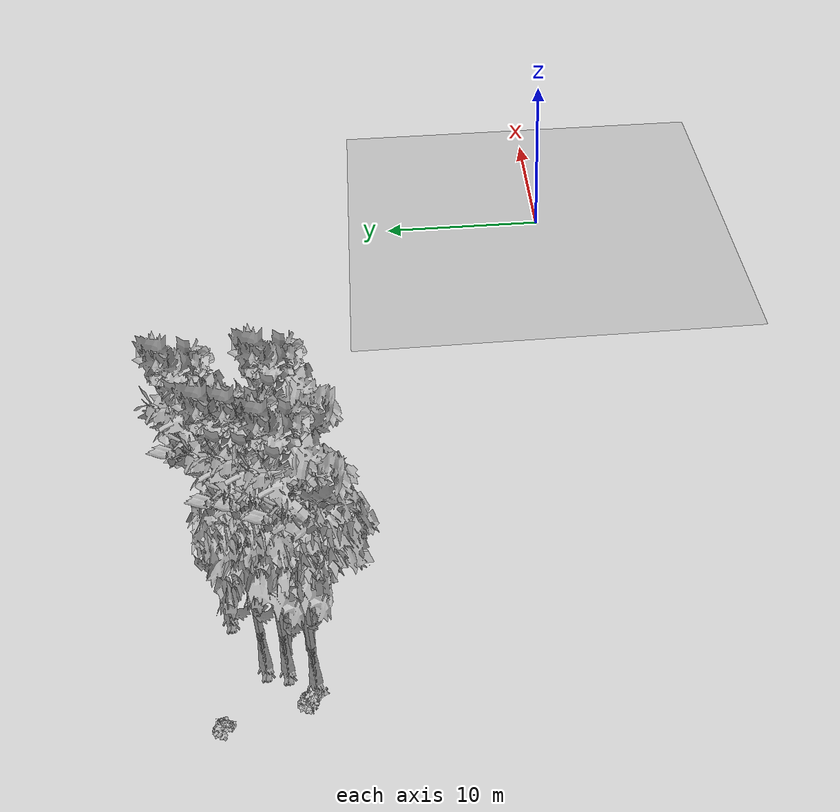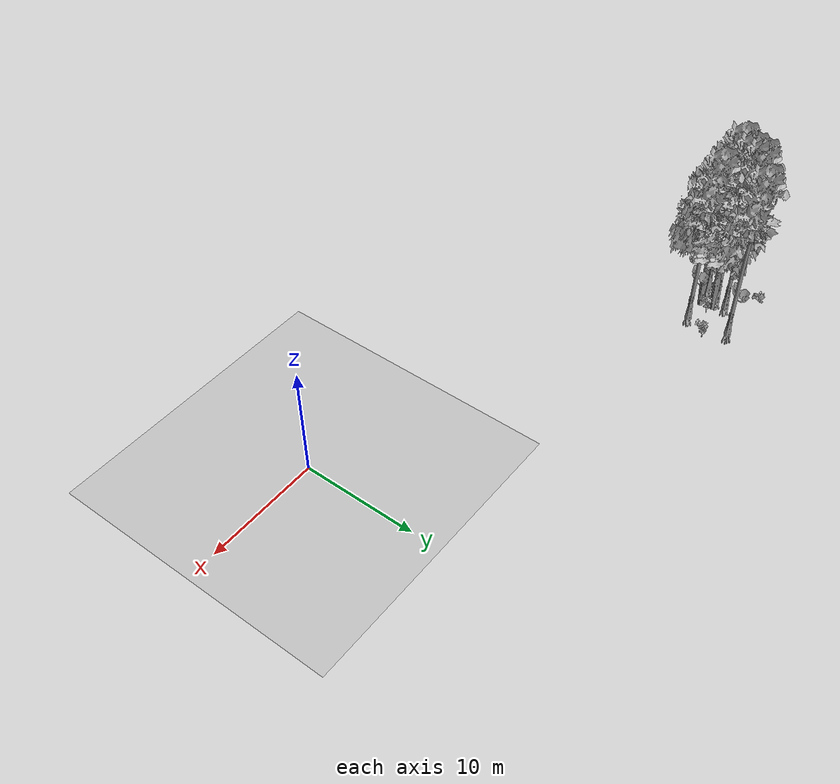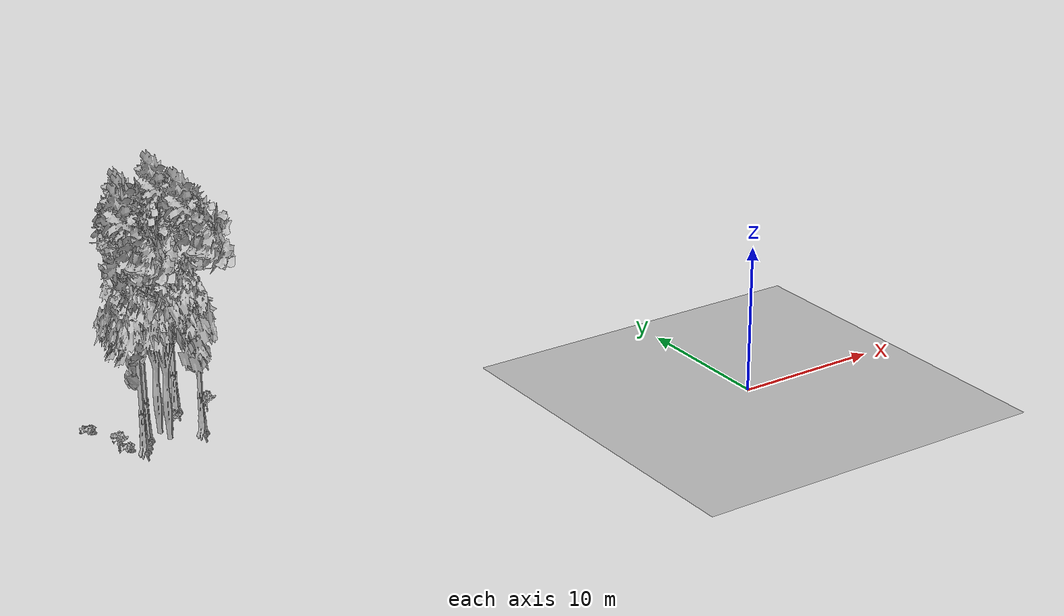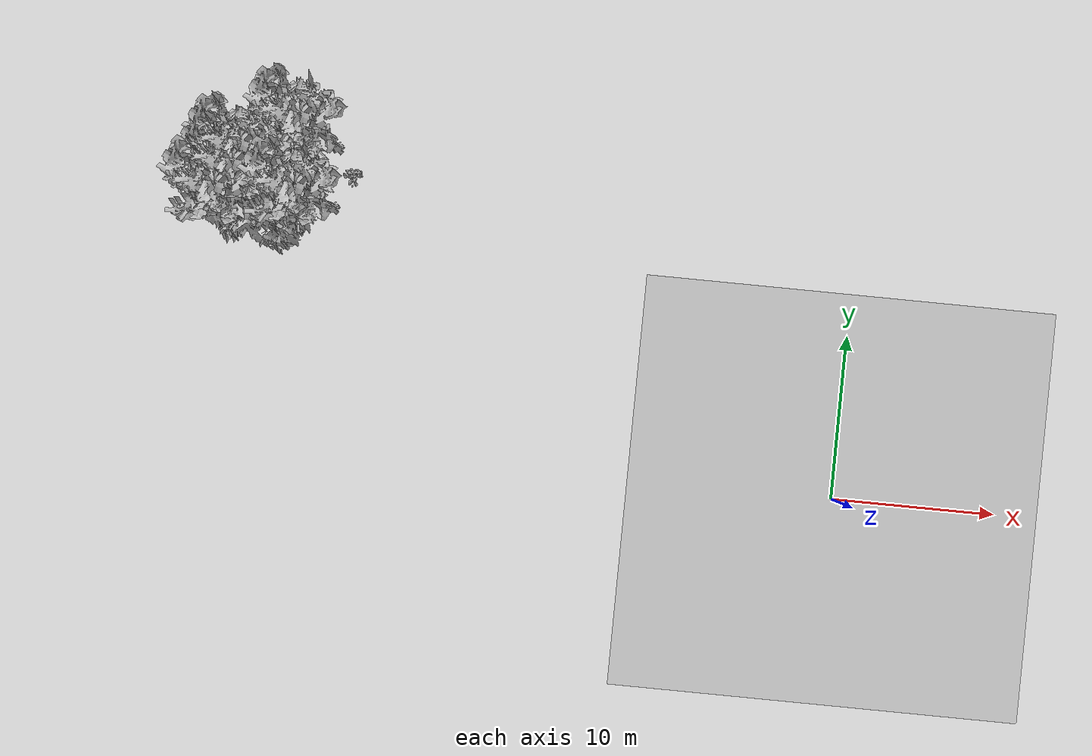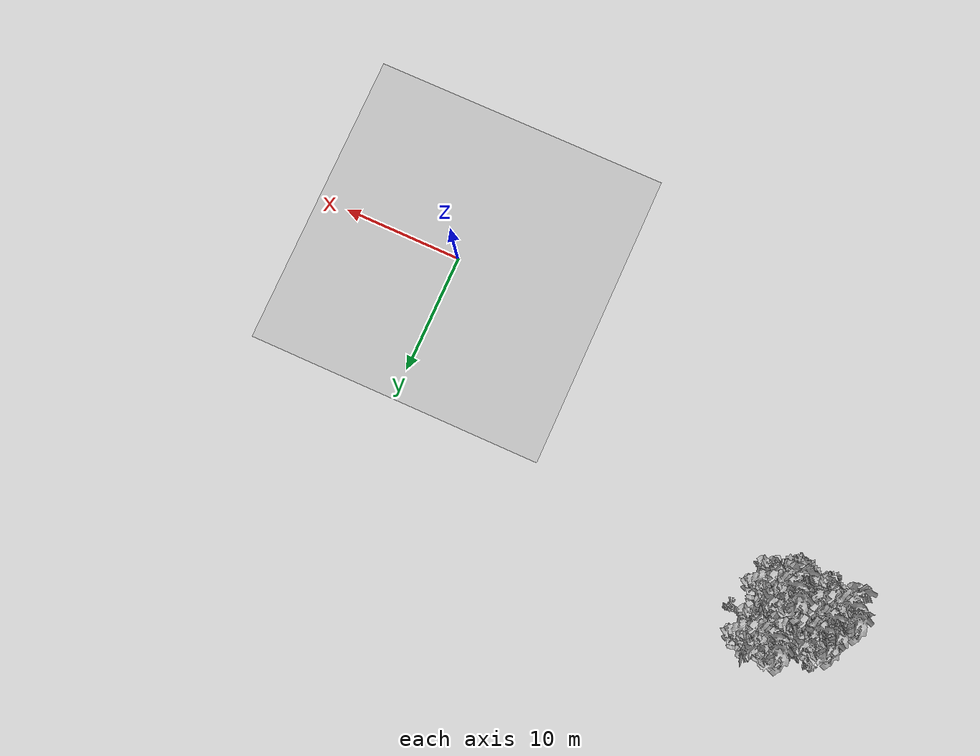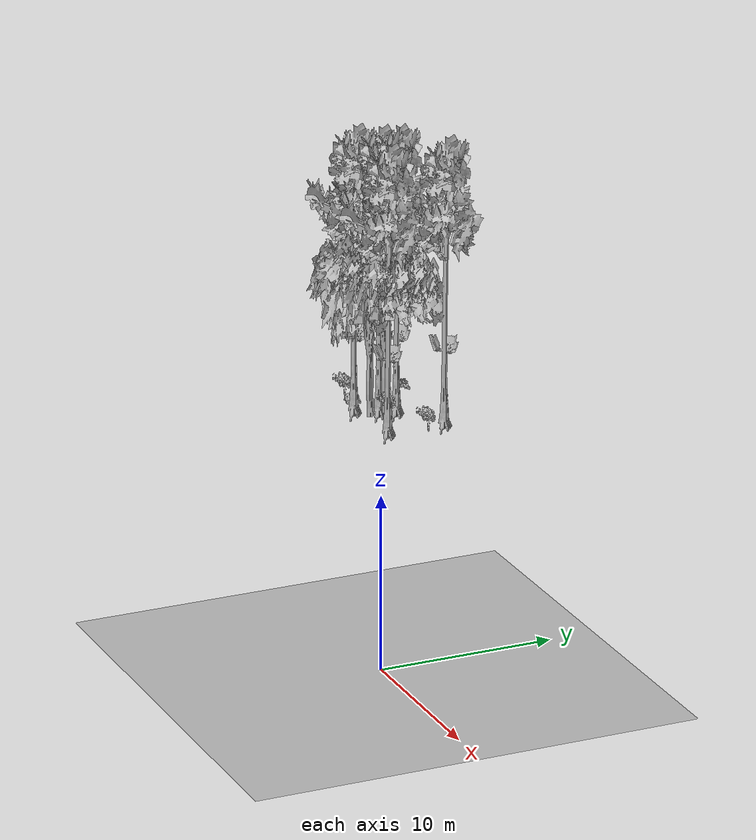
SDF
<sdf version="1.7">
 <world name="default">
  <model name="ground_plane">
   <static>1</static>
   <link name="link">
    <collision name="collision">
     <pose>-50 0 0 0 -0 0</pose>
     <geometry><plane><normal>0 0 1</normal><size>80 80</size></plane></geometry>
     <surface><contact><ode><min_depth>0.01</min_depth><max_vel>0</max_vel></ode></contact></surface>
    </collision>
    <visual name="grass">
     <cast_shadows>0</cast_shadows>
     <geometry>
      <mesh>
       <scale>0.46714285714285714 0.46714285714285714 0.1</scale>
       <uri>file://grass_plane/meshes/grass_plane.dae</uri>
      </mesh>
     </geometry>
    </visual>
   </link>
  </model>
  <model name="Tree 197">
   <static>1</static>
   <pose>-32.24280859333469 14.80828478212706 0 1.57079 -0 0</pose>
   <link name="link">
    <collision name="collision">
     <geometry><mesh><scale>3.5 5 3.5</scale><uri>model://tree_9/meshes/tree_9.obj</uri></mesh></geometry>
    </collision>
    <visual name="visual">
     <geometry><mesh><scale>3.5 5 3.5</scale><uri>model://tree_9/meshes/tree_9.obj</uri></mesh></geometry>
    </visual>
   </link>
  </model>
  <model name="Tree 265">
   <static>1</static>
   <pose>-34.81113696059122 15.767453813014242 0 1.57079 -0 0</pose>
   <link name="link">
    <collision name="collision">
     <geometry><mesh><scale>3.5 5 3.5</scale><uri>model://tree_2/meshes/tree_2.obj</uri></mesh></geometry>
    </collision>
    <visual name="visual">
     <geometry><mesh><scale>3.5 5 3.5</scale><uri>model://tree_2/meshes/tree_2.obj</uri></mesh></geometry>
    </visual>
   </link>
  </model>
  <model name="Tree 381">
   <static>1</static>
   <pose>-35.32030512550278 16.733878264651274 0 1.57079 -0 0</pose>
   <link name="link">
    <collision name="collision">
     <geometry><mesh><scale>3.5 5 3.5</scale><uri>model://tree_9/meshes/tree_9.obj</uri></mesh></geometry>
    </collision>
    <visual name="visual">
     <geometry><mesh><scale>3.5 5 3.5</scale><uri>model://tree_9/meshes/tree_9.obj</uri></mesh></geometry>
    </visual>
   </link>
  </model>
  <model name="Tree 397">
   <static>1</static>
   <pose>-32.31409940740376 18.50196614774059 0 1.57079 -0 0</pose>
   <link name="link">
    <collision name="collision">
     <geometry><mesh><scale>3.5 5 3.5</scale><uri>model://tree_9/meshes/tree_9.obj</uri></mesh></geometry>
    </collision>
    <visual name="visual">
     <geometry><mesh><scale>3.5 5 3.5</scale><uri>model://tree_9/meshes/tree_9.obj</uri></mesh></geometry>
    </visual>
   </link>
  </model>
  <model name="Tree 500">
   <static>1</static>
   <pose>-35.60337927903242 15.734019120228886 0 1.57079 -0 0</pose>
   <link name="link">
    <collision name="collision">
     <geometry><mesh><scale>3.5 5 3.5</scale><uri>model://tree_9/meshes/tree_9.obj</uri></mesh></geometry>
    </collision>
    <visual name="visual">
     <geometry><mesh><scale>3.5 5 3.5</scale><uri>model://tree_9/meshes/tree_9.obj</uri></mesh></geometry>
    </visual>
   </link>
  </model>
  <model name="Tree 522">
   <static>1</static>
   <pose>-36.43197025982589 14.462302105366291 0 1.57079 -0 0</pose>
   <link name="link">
    <collision name="collision">
     <geometry><mesh><scale>3.5 5 3.5</scale><uri>model://tree_9/meshes/tree_9.obj</uri></mesh></geometry>
    </collision>
    <visual name="visual">
     <geometry><mesh><scale>3.5 5 3.5</scale><uri>model://tree_9/meshes/tree_9.obj</uri></mesh></geometry>
    </visual>
   </link>
  </model>
  <model name="Tree 629">
   <static>1</static>
   <pose>-34.63153295215398 14.69196833112587 0 1.57079 -0 0</pose>
   <link name="link">
    <collision name="collision">
     <geometry><mesh><scale>3.5 5 3.5</scale><uri>model://tree_2/meshes/tree_2.obj</uri></mesh></geometry>
    </collision>
    <visual name="visual">
     <geometry><mesh><scale>3.5 5 3.5</scale><uri>model://tree_2/meshes/tree_2.obj</uri></mesh></geometry>
    </visual>
   </link>
  </model>
  <model name="Bush 107">
   <static>1</static>
   <pose>-37.49767251860915 14.770707141820665 0 1.57079 -0 0</pose>
   <link name="link">
    <collision name="collision">
     <geometry><mesh><scale>2 2 2</scale><uri>model://bush_2/meshes/bush_2.obj</uri></mesh></geometry>
     <surface><contact><collide_without_contact>false</collide_without_contact></contact></surface>
    </collision>
    <visual name="visual">
     <geometry><mesh><scale>2 2 2</scale><uri>model://bush_2/meshes/bush_2.obj</uri></mesh></geometry>
    </visual>
   </link>
  </model>
  <model name="Bush 120">
   <static>1</static>
   <pose>-33.91439762673177 15.64661512996669 0 1.57079 -0 0</pose>
   <link name="link">
    <collision name="collision">
     <geometry><mesh><scale>2 2 2</scale><uri>model://bush_5/meshes/bush_5.obj</uri></mesh></geometry>
     <surface><contact><collide_without_contact>false</collide_without_contact></contact></surface>
    </collision>
    <visual name="visual">
     <geometry><mesh><scale>2 2 2</scale><uri>model://bush_5/meshes/bush_5.obj</uri></mesh></geometry>
    </visual>
   </link>
  </model>
  <model name="Bush 147">
   <static>1</static>
   <pose>-30.890859632748693 16.85314967162484 0 1.57079 -0 0</pose>
   <link name="link">
    <collision name="collision">
     <geometry><mesh><scale>2 2 2</scale><uri>model://bush_5/meshes/bush_5.obj</uri></mesh></geometry>
     <surface><contact><collide_without_contact>false</collide_without_contact></contact></surface>
    </collision>
    <visual name="visual">
     <geometry><mesh><scale>2 2 2</scale><uri>model://bush_5/meshes/bush_5.obj</uri></mesh></geometry>
    </visual>
   </link>
  </model>
  <model name="Bush 286">
   <static>1</static>
   <pose>-38.01505584436138 14.583586574918705 0 1.57079 -0 0</pose>
   <link name="link">
    <collision name="collision">
     <geometry><mesh><scale>2 2 2</scale><uri>model://bush_5/meshes/bush_5.obj</uri></mesh></geometry>
     <surface><contact><collide_without_contact>false</collide_without_contact></contact></surface>
    </collision>
    <visual name="visual">
     <geometry><mesh><scale>2 2 2</scale><uri>model://bush_5/meshes/bush_5.obj</uri></mesh></geometry>
    </visual>
   </link>
  </model>
  <model name="Bush 343">
   <static>1</static>
   <pose>-38.480741420987414 18.426139552964493 0 1.57079 -0 0</pose>
   <link name="link">
    <collision name="collision">
     <geometry><mesh><scale>2 2 2</scale><uri>model://bush_2/meshes/bush_2.obj</uri></mesh></geometry>
     <surface><contact><collide_without_contact>false</collide_without_contact></contact></surface>
    </collision>
    <visual name="visual">
     <geometry><mesh><scale>2 2 2</scale><uri>model://bush_2/meshes/bush_2.obj</uri></mesh></geometry>
    </visual>
   </link>
  </model>
 </world>
</sdf>
